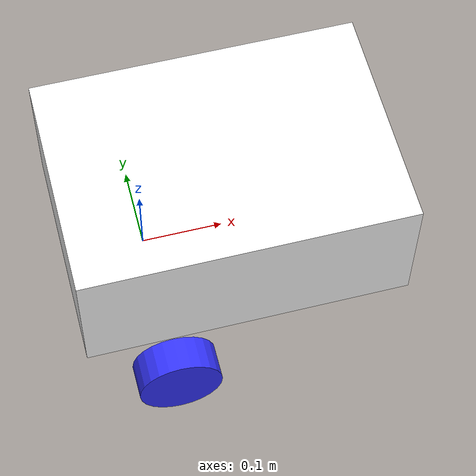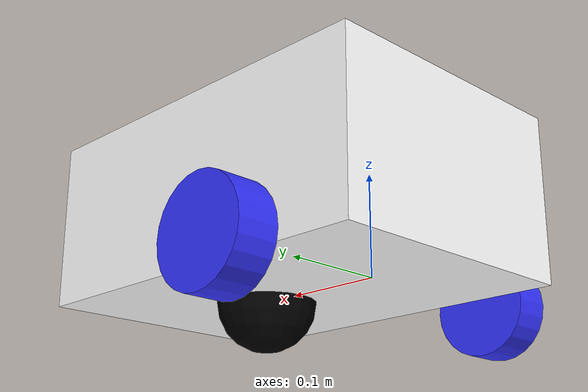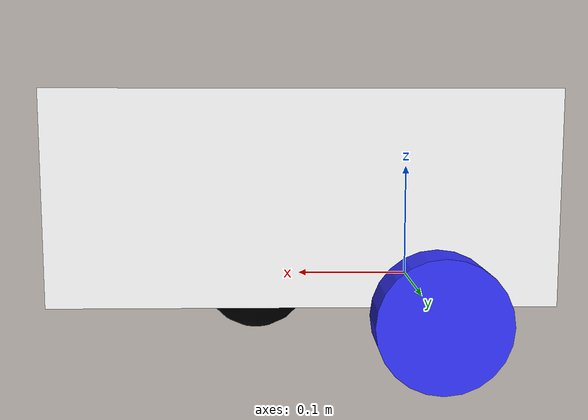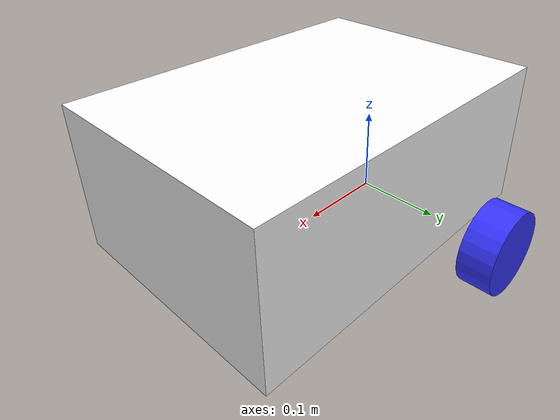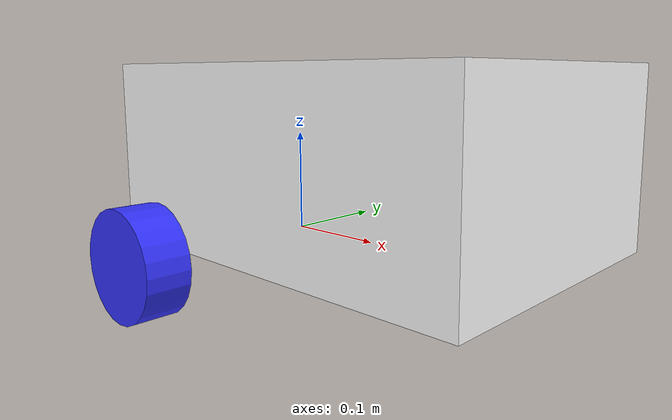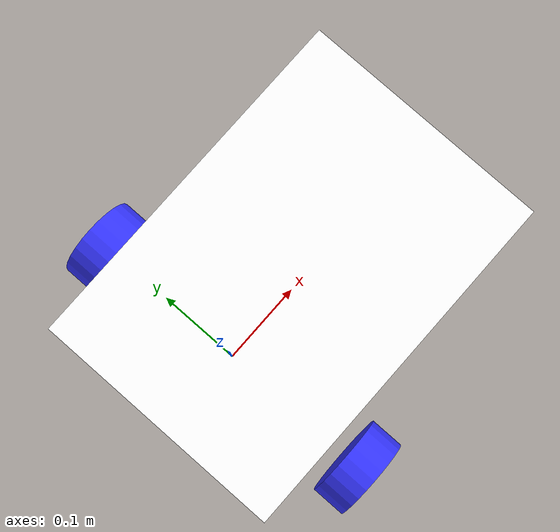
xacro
<?xml version="1.0"?>
<robot xmlns:xacro="http://www.ros.org/wiki/xacro"  >

<xacro:include filename="inertial_macros.xacro" />

<material name="white">
    <color rgba="1 1 1 1"/>
</material>

<material name="orange">
    <color rgba="1 0.3 0.1 1"/>
</material>

<material name="blue">
    <color rgba="0.2 0.2 1 1"/>
</material>

<material name="black">
    <color rgba="0 0 0 1"/>
</material>
<!-- BASE LINK -->

<link name="base_link">

</link>
<!-- CHASSIS LINK -->
<joint name="chassis_joint" type="fixed">
    <parent link="base_link"/>
    <child link="chassis"/>
    <origin xyz="-0.1 0 0"/>
</joint>

<link name="chassis">
    <visual>
        <origin xyz="0.2 0 0.085" rpy="0 0 0"/>
        <geometry>
            <box size="0.4 0.28 0.17"/>
        </geometry>
        <material name="white"/>
    </visual>
    <collision>
        <origin xyz="0.2 0 0.085" rpy="0 0 0"/>
        <geometry>
            <box size="0.4 0.28 0.17"/>
        </geometry>
    </collision>
    <xacro:inertial_box mass="0.5" x="0.4" y="0.28" z="0.17">       <!--NOT SURE-->
        <origin xyz="0.2 0 0.14" rpy="0 0 0"/>                     <!-- NOT SURE-->
    </xacro:inertial_box>

</link>

<!-- LEFT WHEEL LINK -->

<joint name="left_wheel_joint" type="continuous">
    <parent link="base_link"/>
    <child link="left_wheel"/>
    <origin xyz="0 0.185 0" rpy="-${pi/2} 0 0"/>     <!-- 0.185 NOT SURE-->
    <axis xyz="0 0 1"/>
</joint>

<link name="left_wheel">
    <visual>
        <geometry>
            <cylinder length="0.04" radius="0.05" />
        </geometry>
        <material name="blue"/>
    </visual>
    <collision>
        <geometry>
            <cylinder length="0.04" radius="0.05" />
        </geometry>
    </collision>

    <xacro:inertial_cylinder mass="0.1" length="0.05" radius="0.05">
        <origin xyz="0 0 0" rpy="0 0 0"/>
    </xacro:inertial_cylinder>

</link>

<!-- RIGHT WHEEL LINK -->

<joint name="right_wheel_joint" type="continuous">
    <parent link="base_link"/>
    <child link="right_wheel"/>
    <origin xyz="0 -0.185 0" rpy="${pi/2} 0 0"/>     <!-- 0.185 NOT SURE-->
    <axis xyz="0 0 -1"/>
</joint>

<link name="right_wheel">
    <visual>
        <geometry>
            <cylinder length="0.04" radius="0.05" />
        </geometry>
        <material name="blue"/>
    </visual>
    <collision>
        <geometry>
            <cylinder length="0.04" radius="0.05" />
        </geometry>
    </collision>
    <xacro:inertial_cylinder mass="0.1" length="0.05" radius="0.05">
        <origin xyz="0 0 0" rpy="0 0 0"/>
    </xacro:inertial_cylinder>

</link>

<!-- CASTER WHEEL LINK -->

<joint name="caster_wheel_joint" type="fixed">
    <parent link="chassis"/>
    <child link="caster_wheel"/>
    <origin xyz="0.24 0 0" rpy="0 0 0"/>      <!-- 0.24 NOT SURE-->
</joint>

<link name="caster_wheel">
    <visual>
        <geometry>
            <sphere radius="0.05" />
        </geometry>
        <material name="black"/>
    </visual>
    <collision>
        <geometry>
            <sphere radius="0.05" />
        </geometry>
    </collision>
    <xacro:inertial_sphere mass="0.1" radius="0.05">
        <origin xyz="0 0 0" rpy="0 0 0"/>
    </xacro:inertial_sphere>

</link>

</robot>
